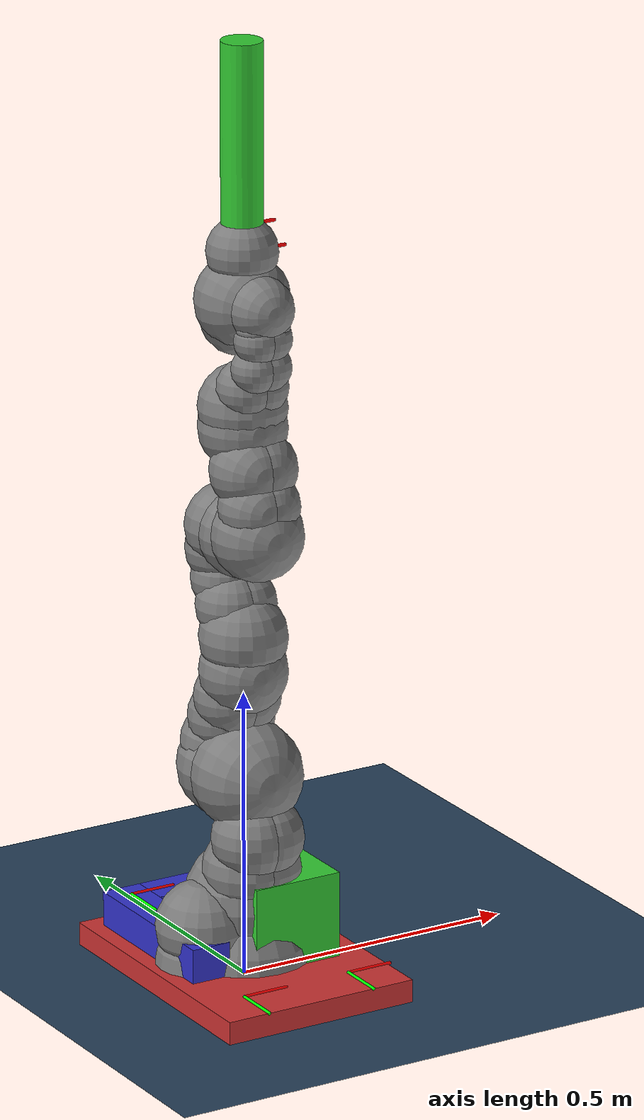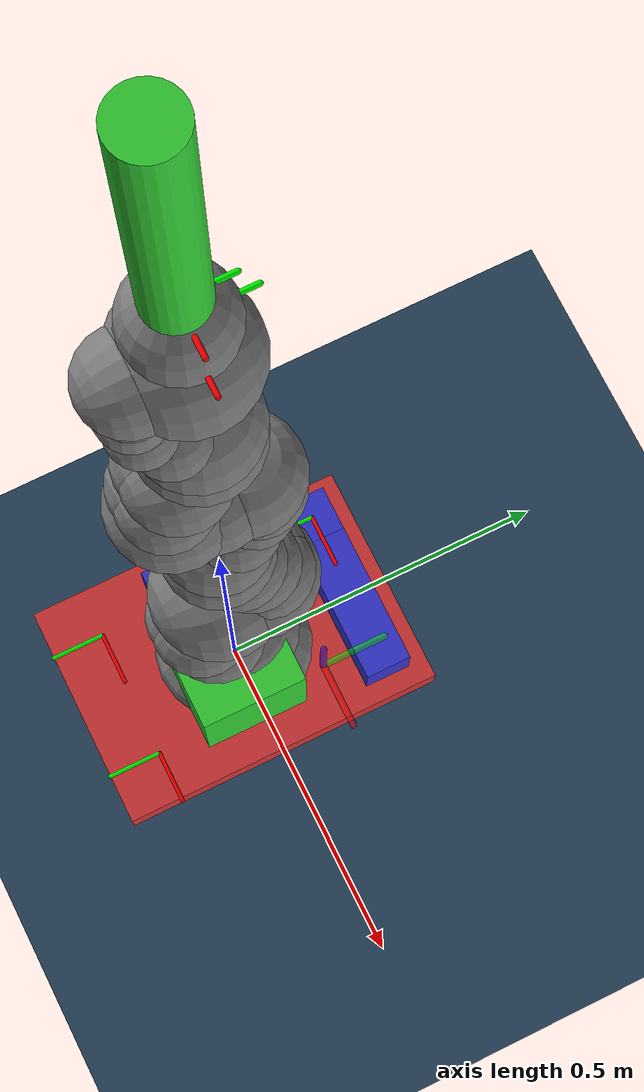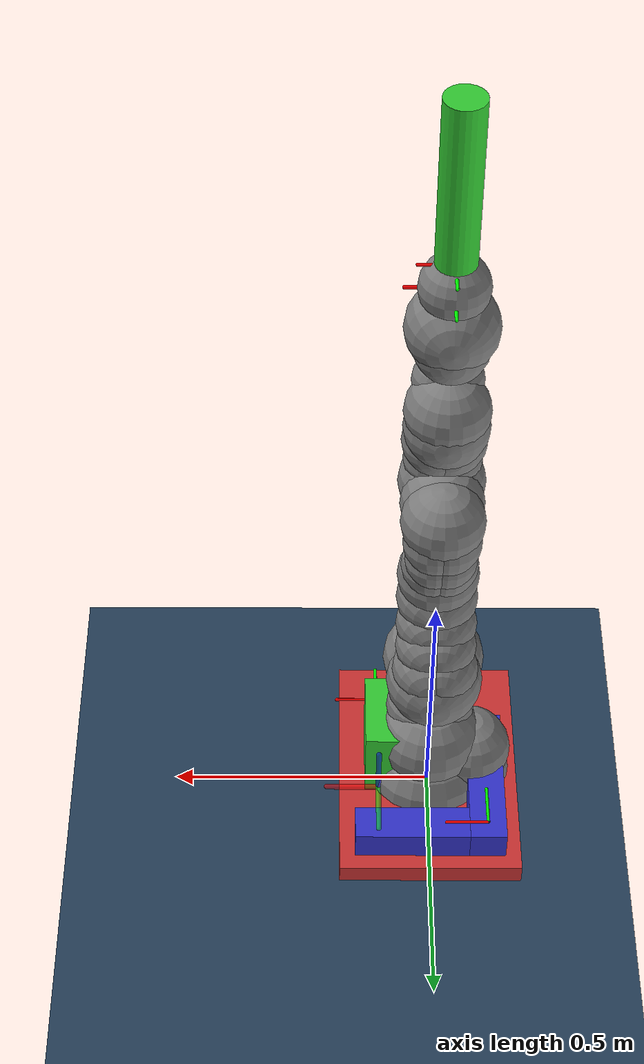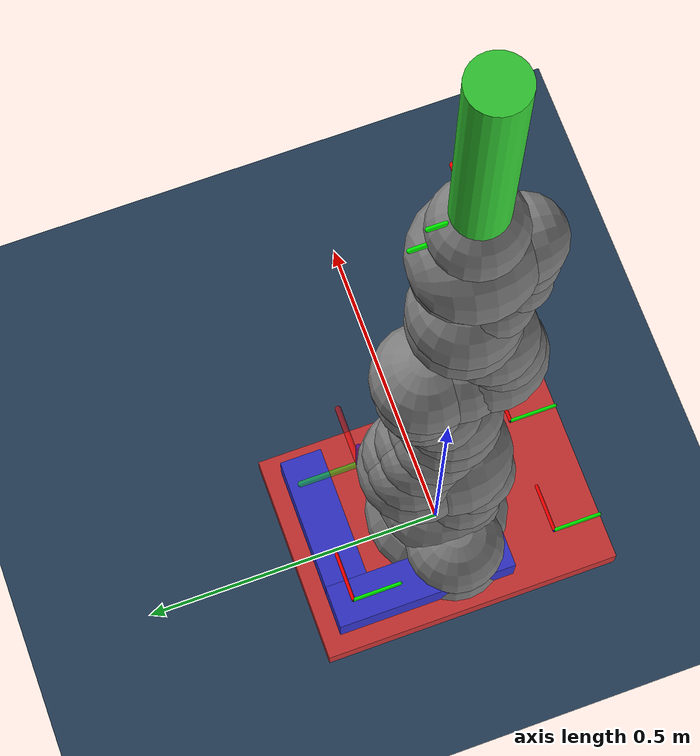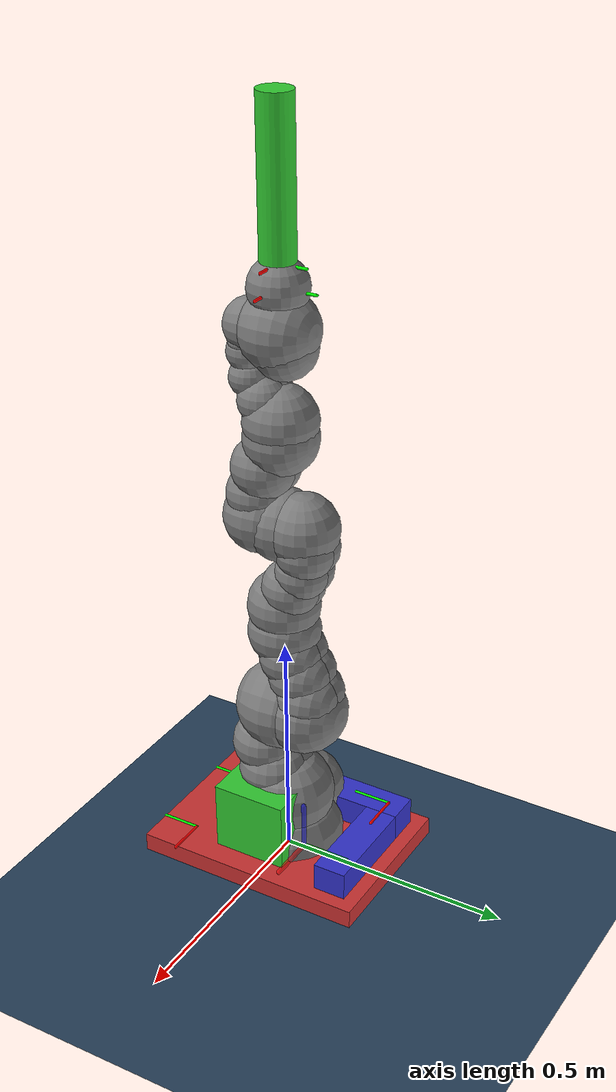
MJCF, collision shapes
<mujoco model="ur5e scene">
  <compiler angle="radian" meshdir="kuka/assets" autolimits="true"/>

  <statistic center="0.3 0 0.4" extent="0.8"/>

  <visual>
    <headlight diffuse="0.6 0.6 0.6" ambient="0.1 0.1 0.1" specular="0 0 0"/>
    <rgba haze="0.15 0.25 0.35 1"/>
    <global azimuth="120" elevation="-20"/>
  </visual>

  <asset>
    <texture type="skybox" builtin="gradient" rgb1="0.3 0.5 0.7" rgb2="0 0 0" width="512" height="3072"/>
    <texture type="2d" name="groundplane" builtin="checker" mark="edge" rgb1="0.2 0.3 0.4" rgb2="0.1 0.2 0.3" markrgb="0.8 0.8 0.8" width="300" height="300"/>
    <material name="groundplane" texture="groundplane" texuniform="true" texrepeat="5 5" reflectance="0.2"/>
  <material class="iiwa" name="gray" rgba="0.4 0.4 0.4 1"/>
    <material class="iiwa" name="light_gray" rgba="0.6 0.6 0.6 1"/>
    <material class="iiwa" name="black" rgba="0 0 0 1"/>
    <material class="iiwa" name="orange" rgba="1 0.423529 0.0392157 1"/>

    <mesh file="link_0.obj"/>
    <mesh file="link_1.obj"/>
    <mesh file="link_2_orange.obj"/>
    <mesh file="link_2_grey.obj"/>
    <mesh file="link_3.obj"/>
    <mesh file="band.obj"/>
    <mesh file="kuka.obj"/>
    <mesh file="link_4_orange.obj"/>
    <mesh file="link_4_grey.obj"/>
    <mesh file="link_5.obj"/>
    <mesh file="link_6_orange.obj"/>
    <mesh file="link_6_grey.obj"/>
    <mesh file="link_7.obj"/>
  <mesh name="tool_mesh" file="screwdriver.obj"/>
  <mesh name="screw_plate_mesh" file="Screwing_plate.obj"/>
  </asset>

  <worldbody>
    <light pos="0 0 1.5" dir="0 0 -1" directional="true"/>
    <geom name="floor" size="0 0 0.05" type="plane" material="groundplane"/>
    <!-- Definition of the world frame -->
    <body name="world_frame" pos="0.0 0.0 0.0">
        <geom name="world_x_axis" type="capsule" fromto="0 0 0 0.15 0 0" size="0.01" rgba="1 0 0 1" contype="0" conaffinity="0"/>
        <geom name="world_y_axis" type="capsule" fromto="0 0 0 0 0.15 0" size="0.01" rgba="0 1 0 1" contype="0" conaffinity="0"/>
        <geom name="world_z_axis" type="capsule" fromto="0 0 0 0 0 0.15" size="0.01" rgba="0 0 1 1" contype="0" conaffinity="0"/>
    </body>

  <light name="top" pos="0 0 2" mode="trackcom"/>
    <body name="base" childclass="iiwa">
      <inertial mass="5" pos="-0.1 0 0.07" diaginertia="0.05 0.06 0.03"/>
      <geom class="visual" mesh="link_0"/>
      <geom class="collision" size="0.12" pos="0 0 0.03"/>
      <geom class="collision" size="0.08" pos="-0.08 0 0.103"/>
      <geom class="collision" size="0.08" pos="-0.08 0 0.04"/>
      <geom class="collision" size="0.1" pos="0 0 0.14"/>
      <body name="link1" pos="0 0 0.1575">
        <inertial mass="5.76" pos="0 -0.03 0.12" diaginertia="0.0333 0.033 0.0123"/>
        <joint name="joint1" class="joint1"/>
        <geom class="visual" mesh="link_1"/>
        <geom class="collision" size="0.08" pos="0 0 -0.0005"/>
        <geom class="collision" size="0.075" pos="0.01 -0.025 0.0425"/>
        <geom class="collision" size="0.075" pos="-0.01 -0.025 0.0425"/>
        <geom class="collision" size="0.07" pos="0.01 -0.045 0.1025"/>
        <geom class="collision" size="0.07" pos="-0.01 -0.045 0.1025"/>
        <body name="link2" pos="0 0 0.2025" quat="0 0 1 1">
          <inertial mass="6.35" pos="0.0003 0.059 0.042" diaginertia="0.0305 0.0304 0.011" quat="0 0 1 1"/>
          <joint name="joint2" class="joint2"/>
          <geom class="visual" material="orange" mesh="link_2_orange"/>
          <geom class="visual" mesh="link_2_grey"/>
          <geom class="collision" size="0.095" pos="0 0 -0.01"/>
          <geom class="collision" size="0.09" pos="0 0 0.045"/>
          <geom class="collision" size="0.07" pos="-0.01 0.04 0.054"/>
          <geom class="collision" size="0.065" pos="-0.01 0.09 0.04"/>
          <geom class="collision" size="0.065" pos="-0.01 0.13 0.02"/>
          <geom class="collision" size="0.07" pos="0.01 0.04 0.054"/>
          <geom class="collision" size="0.065" pos="0.01 0.09 0.04"/>
          <geom class="collision" size="0.065" pos="0.01 0.13 0.02"/>
          <geom class="collision" size="0.075" pos="0 0.18 0"/>
          <body name="link3" pos="0 0.2045 0" quat="0 0 1 1">
            <inertial mass="3.5" pos="0 0.03 0.13" diaginertia="0.025 0.0238 0.0076"/>
            <joint name="joint3" class="joint1"/>
            <geom class="visual" mesh="link_3"/>
            <geom class="visual" material="light_gray" mesh="band"/>
            <geom class="visual" material="black" mesh="kuka"/>
            <geom class="collision" size="0.075" pos="0 0 0.0355"/>
            <geom class="collision" size="0.06" pos="0.01 0.023 0.0855"/>
            <geom class="collision" size="0.055" pos="0.01 0.048 0.1255"/>
            <geom class="collision" size="0.06" pos="0.01 0.056 0.1755"/>
            <geom class="collision" size="0.06" pos="-0.01 0.023 0.0855"/>
            <geom class="collision" size="0.055" pos="-0.01 0.048 0.1255"/>
            <geom class="collision" size="0.06" pos="-0.01 0.056 0.1755"/>
            <geom class="collision" size="0.075" pos="0 0.045 0.2155"/>
            <geom class="collision" size="0.075" pos="0 0 0.2155"/>
            <body name="link4" pos="0 0 0.2155" quat="1 1 0 0">
              <inertial mass="3.5" pos="0 0.067 0.034" diaginertia="0.017 0.0164 0.006" quat="1 1 0 0"/>
              <joint name="joint4" class="joint2"/>
              <geom class="visual" material="orange" mesh="link_4_orange"/>
              <geom class="visual" mesh="link_4_grey"/>
              <geom class="collision" size="0.078" pos="0 0.01 0.046"/>
              <geom class="collision" size="0.06" pos="0.01 0.06 0.052"/>
              <geom class="collision" size="0.065" pos="0.01 0.12 0.034"/>
              <geom class="collision" size="0.06" pos="-0.01 0.06 0.052"/>
              <geom class="collision" size="0.065" pos="-0.01 0.12 0.034"/>
              <geom class="collision" size="0.075" pos="0 0.184 0"/>
              <body name="link5" pos="0 0.1845 0" quat="0 0 1 1">
                <inertial mass="3.5" pos="0.0001 0.021 0.076" diaginertia="0.01 0.0087 0.00449"/>
                <joint name="joint5" class="joint1"/>
                <geom class="visual" mesh="link_5"/>
                <geom class="visual" material="light_gray" mesh="band"/>
                <geom class="visual" material="black" mesh="kuka"/>
                <geom class="collision" size="0.075" pos="0 0 0.0335"/>
                <geom class="collision" size="0.05" pos="-0.012 0.031 0.0755"/>
                <geom class="collision" size="0.05" pos="0.012 0.031 0.0755"/>
                <geom class="collision" size="0.04" pos="-0.012 0.06 0.1155"/>
                <geom class="collision" size="0.04" pos="0.012 0.06 0.1155"/>
                <geom class="collision" size="0.04" pos="-0.01 0.065 0.1655"/>
                <geom class="collision" size="0.04" pos="0.01 0.065 0.1655"/>
                <geom class="collision" size="0.035" pos="-0.012 0.065 0.1855"/>
                <geom class="collision" size="0.035" pos="0.012 0.065 0.1855"/>
                <body name="link6" pos="0 0 0.2155" quat="1 1 0 0">
                  <inertial mass="1.8" pos="0 0.0006 0.0004" diaginertia="0.0049 0.0047 0.0036" quat="1 1 0 0"/>
                  <joint name="joint6" class="joint2"/>
                  <geom class="visual" material="orange" mesh="link_6_orange"/>
                  <geom class="visual" mesh="link_6_grey"/>
                  <geom class="collision" size="0.055" pos="0 0 -0.059"/>
                  <geom class="collision" size="0.065" pos="0 -0.03 0.011"/>
                  <geom class="collision" size="0.08"/>
                  <body name="link7" pos="0 0.081 0" quat="0 0 1 1">
                    <inertial mass="1.2" pos="0 0 0.02" diaginertia="0.001 0.001 0.001"/>
                    <!-- Reference frame: wrist_3_link -->
                    <geom type="capsule" fromto="0 0 0 0.08 0 0" rgba="1 0 0 1" size="0.003" contype="0" conaffinity="0"/>
                    <geom type="capsule" fromto="0 0 0 0 0.08 0" rgba="0 1 0 1" size="0.003" contype="0" conaffinity="0"/>
                    <geom type="capsule" fromto="0 0 0 0 0 0.08" rgba="0 0 1 1" size="0.003" contype="0" conaffinity="0"/>
                    <joint name="joint7" class="joint3"/>
                    <geom class="visual" mesh="link_7"/>
                    <geom class="collision" size="0.06" pos="0 0 0.001"/>
                    <site pos="0 0 0.02" name="attachment_site"/>
                    <geom type="capsule" fromto="0 0 0 0.05 0 0" rgba="1 0 0 1" size="0.002" contype="0" conaffinity="0"/>
                    <geom type="capsule" fromto="0 0 0 0 0.05 0" rgba="0 1 0 1" size="0.002" contype="0" conaffinity="0"/>
                    <geom type="capsule" fromto="0 0 0 0 0 0.05" rgba="0 0 1 1" size="0.002" contype="0" conaffinity="0"/>
                    <body name="ee_frame_visual_only" pos="0 0 0.045">
                      <geom type="capsule" fromto="0 0 0 0.05 0 0" rgba="1 0 0 1" size="0.002" contype="0" conaffinity="0"/>
                      <geom type="capsule" fromto="0 0 0 0 0.05 0" rgba="0 1 0 1" size="0.002" contype="0" conaffinity="0"/>
                      <geom type="capsule" fromto="0 0 0 0 0 0.05" rgba="0 0 1 1" size="0.002" contype="0" conaffinity="0"/>
                      <!-- The tool is imported by a python code -->

                      <!-- Reference frame attached @ tool tip for screwing (T) -->
                      <body name="tool_frame" pos="0 0 0" quat="1 0 0 0">
                        <site name="tool_site" pos="0 0 0" quat="1 0 0 0"/>
                        <geom type="capsule" fromto="0 0 0 0.06 0 0" rgba="1 0 0 1" size="0.003" contype="0" conaffinity="0"/>
                        <geom type="capsule" fromto="0 0 0 0 0.06 0" rgba="0 1 0 1" size="0.003" contype="0" conaffinity="0"/>
                        <geom type="capsule" fromto="0 0 0 0 0 0.06" rgba="0 0 1 1" size="0.003" contype="0" conaffinity="0"/>
                    </body>
                  <body name="tool_top" pos="0 0 0">
      <inertial mass="2.6" pos="0 0 0.155" diaginertia="0.0143 0.0143 0.0016"/>
      <geom type="mesh" mesh="tool_mesh" rgba="0.2 0.2 0.2 1" contype="0" conaffinity="0" group="0"/>
      <!-- collision cylinder -->
      <geom name="screwdriver" type="cylinder" size="0.035 0.155" pos="0 0 0.155" rgba="0.2 0.8 0.2 1" contype="1" conaffinity="1" group="3"/>
      <!-- Marker (red sphere) to specify the origin -->
      <site name="mount_site" pos="0 0 0" size="0.005" rgba="1 0 0 1"/>
      <!-- Marker (green sphere) to specify the point of application of the weight -->
      <geom type="sphere" size="0.005" pos="0 0 0.125" rgba="0 1 0 1" contype="0" conaffinity="0" group="2"/>
    </body>
  </body>
                  </body>
                </body>
              </body>
            </body>
          </body>
        </body>
      </body>
    </body>
  <body name="screw_plate" pos="0 0 0">

      <geom type="mesh" mesh="screw_plate_mesh" rgba="0.45 0.45 0.45 1" contype="0" conaffinity="0" group="0"/>
      <!-- Base plate -->
      <geom name="base_plate" type="box" size="0.175 0.25 0.02" pos="0 0 0.02" rgba="0.8 0.2 0.2 1" contype="1" conaffinity="1" group="3"/>

      <!-- Center cube -->
      <geom name="center_cube" type="box" size="0.08 0.08 0.075" pos="0.045 -0.02 0.115" rgba="0.2 0.8 0.2 1" contype="1" conaffinity="1" group="3"/>

      <!-- Longer side -->
      <geom name="longer_side" type="box" size="0.035 0.15 0.03" pos="-0.11 0.07 0.07" rgba="0.2 0.2 0.8 1" contype="1" conaffinity="1" group="3"/>

      <!-- Shorter side -->
      <geom name="shorter_side" type="box" size="0.11 0.035 0.03" pos="0.035 0.185 0.07" rgba="0.2 0.2 0.8 1" contype="1" conaffinity="1" group="3"/>

      <!-- Definition of the sites -->
      <!-- center of the piece -->
      <site name="mount_plate_site" pos="0.0 0.0 0.0" size="0.005" rgba="1 0 0 1"/>

      <!-- Hole 1 -->
      <body name="hole_1_frame_body" pos="0.1 -0.17 0.04" quat="0 1 0 0">
        <geom type="capsule" fromto="0 0 0 0.08 0 0" rgba="1 0 0 1" size="0.003" contype="0" conaffinity="0"/>
        <geom type="capsule" fromto="0 0 0 0 0.08 0" rgba="0 1 0 1" size="0.003" contype="0" conaffinity="0"/>
        <geom type="capsule" fromto="0 0 0 0 0 0.08" rgba="0 0 1 1" size="0.003" contype="0" conaffinity="0"/>
      </body>

      <!-- Hole 2 -->
      <body name="hole_2_frame_body" pos="-0.1 -0.17 0.04" quat="0 1 0 0">
        <geom type="capsule" fromto="0 0 0 0.08 0 0" rgba="1 0 0 1" size="0.003" contype="0" conaffinity="0"/>
        <geom type="capsule" fromto="0 0 0 0 0.08 0" rgba="0 1 0 1" size="0.003" contype="0" conaffinity="0"/>
        <geom type="capsule" fromto="0 0 0 0 0 0.08" rgba="0 0 1 1" size="0.003" contype="0" conaffinity="0"/>
      </body>

      <!-- Hole 3 -->
      <body name="hole_3_frame_body" pos="-0.11 0.185 0.1" quat="0 1 0 0">
        <geom type="capsule" fromto="0 0 0 0.08 0 0" rgba="1 0 0 1" size="0.003" contype="0" conaffinity="0"/>
        <geom type="capsule" fromto="0 0 0 0 0.08 0" rgba="0 1 0 1" size="0.003" contype="0" conaffinity="0"/>
        <geom type="capsule" fromto="0 0 0 0 0 0.08" rgba="0 0 1 1" size="0.003" contype="0" conaffinity="0"/>
      </body>

    </body>
  <body name="reference_target_1" pos="0.1 0.1 0.1"><geom name="reference_x_axis1" type="capsule" fromto="0 0 0 0.1 0 0" size="0.005" rgba="1 0 0 0.5" contype="0" conaffinity="0"/><geom name="reference_y_axis1" type="capsule" fromto="0 0 0 0 0.1 0" size="0.005" rgba="0 1 0 0.5" contype="0" conaffinity="0"/><geom name="reference_z_axis1" type="capsule" fromto="0 0 0 0 0 0.1" size="0.005" rgba="0 0 1 0.5" contype="0" conaffinity="0"/></body></worldbody>

<default><default class="iiwa">
      <material specular="0.5" shininess="0.25"/>
      <joint axis="0 0 1"/>
      <general gaintype="fixed" biastype="affine" gainprm="2000" biasprm="0 -2000 -200"/>
      <default class="joint1">
        <joint range="-2.96706 2.96706"/>
        <general ctrlrange="-2.96706 2.96706"/>
        <default class="joint2">
          <joint range="-2.0944 2.0944"/>
          <general ctrlrange="-2.0944 2.0944"/>
        </default>
      </default>
      <default class="joint3">
        <joint range="-3.05433 3.05433"/>
        <general ctrlrange="-3.05433 3.05433"/>
      </default>
      <default class="visual">
        <geom type="mesh" contype="0" conaffinity="0" group="2" material="gray"/>
      </default>
      <default class="collision">
        <geom group="3"/>
      </default>
      <site size="0.001" rgba="1 0 0 1" group="4"/>
    </default>
  <geom condim="3" friction="1 0.5 0.01" solref="0.02 1" solimp="0.9 0.95 0.001"/>
  </default><actuator><general name="actuator1" joint="joint1" class="joint1"/>
    <general name="actuator2" joint="joint2" class="joint2"/>
    <general name="actuator3" joint="joint3" class="joint1"/>
    <general name="actuator4" joint="joint4" class="joint2"/>
    <general name="actuator5" joint="joint5" class="joint1"/>
    <general name="actuator6" joint="joint6" class="joint2"/>
    <general name="actuator7" joint="joint7" class="joint3"/>
  </actuator></mujoco>
